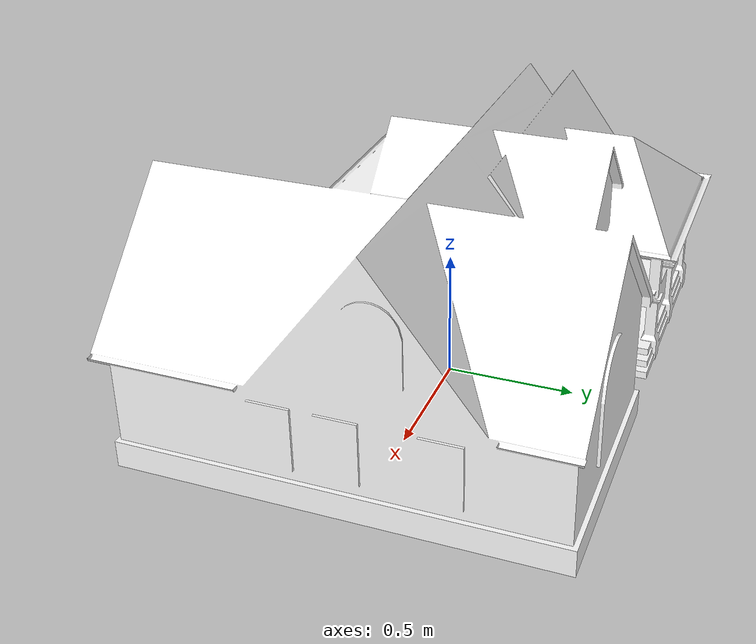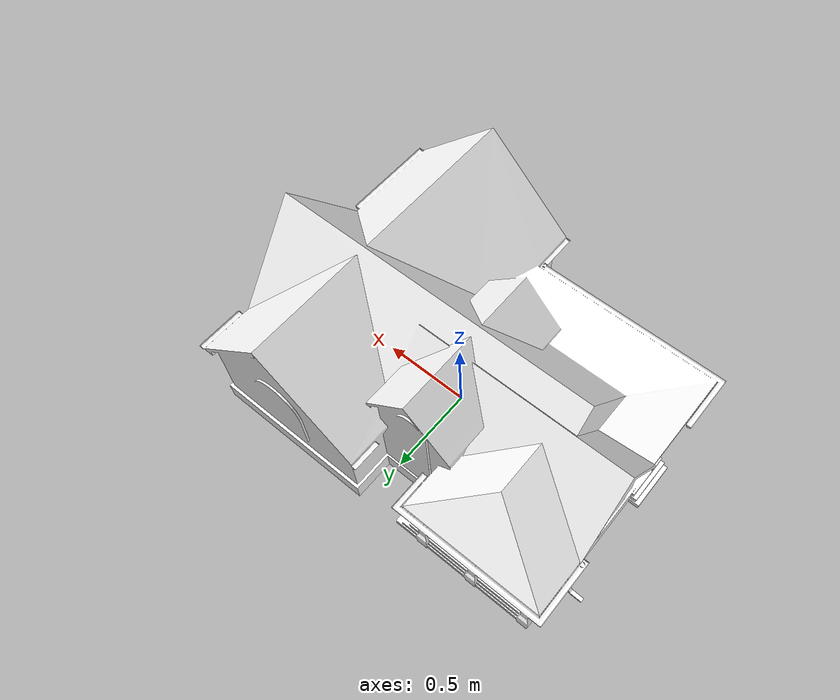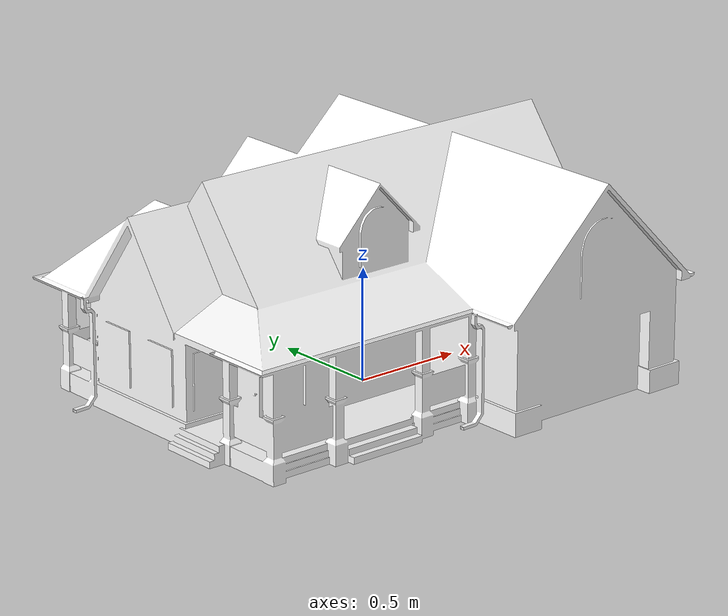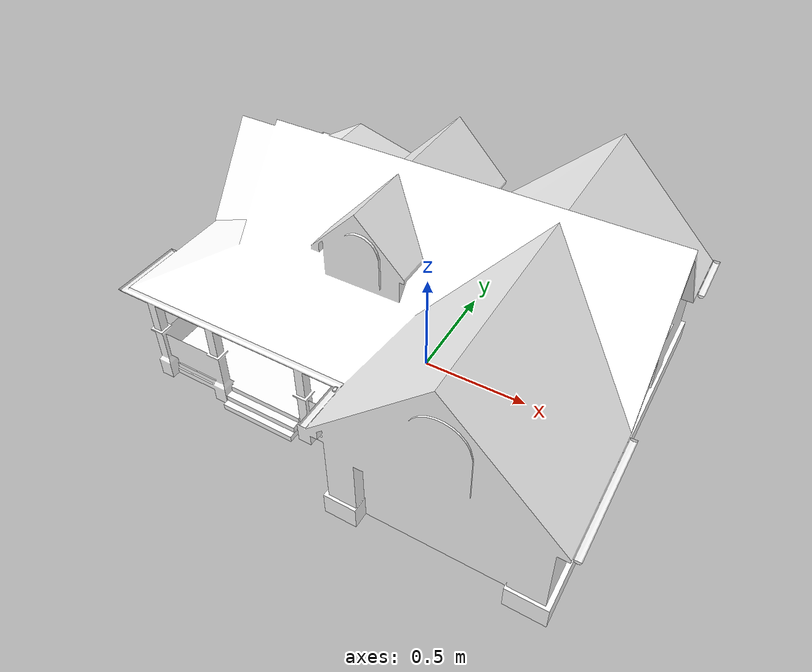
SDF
<?xml version="1.0" ?>
<sdf version="1.5">
  <model name="House 1">
    <static>true</static>
    <link name="link">
      <collision name="collision">
        <geometry>
          <mesh>
            <uri>model://house_1/meshes/house_1.dae</uri>
      <scale>0.2 0.2 0.2</scale>
            <scale>1.5 1.5 1.5</scale>
          </mesh>
        </geometry>
      </collision>
      <visual name="visual">
        <geometry>
          <mesh>
            <uri>model://house_1/meshes/house_1.dae</uri>
      <scale>0.2 0.2 0.2</scale>
            <scale>1.5 1.5 1.5</scale>
          </mesh>
        </geometry>
        <material>
          <script>
            <uri>model://house_1/materials/scripts</uri>
            <uri>model://house_1/materials/scripts</uri>
            <uri>model://house_1/materials/textures</uri>
            <name>House_1/Diffuse</name>
          </script>
          <shader type="normal_map_tangent_space">
            <normal_map>House_1_Normal.png</normal_map>
          </shader>
        </material>
      </visual>
    </link>
  </model>
</sdf>
